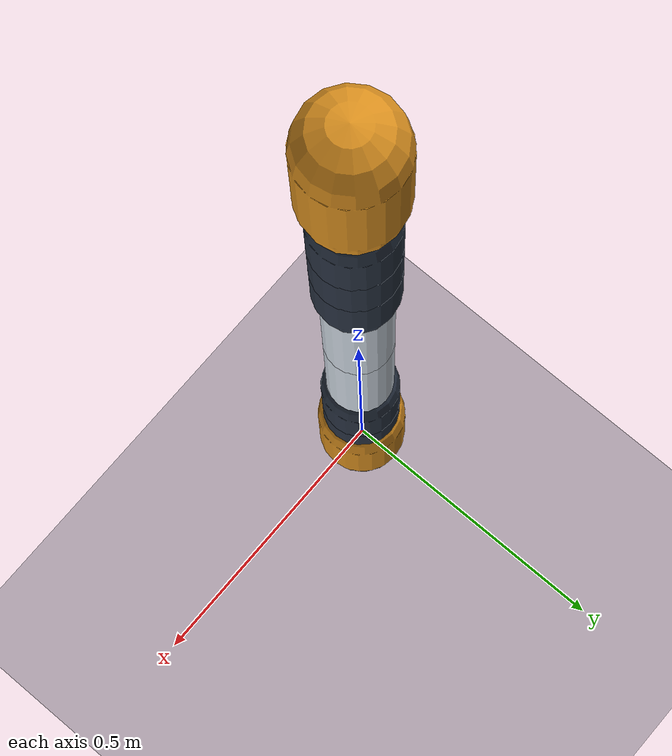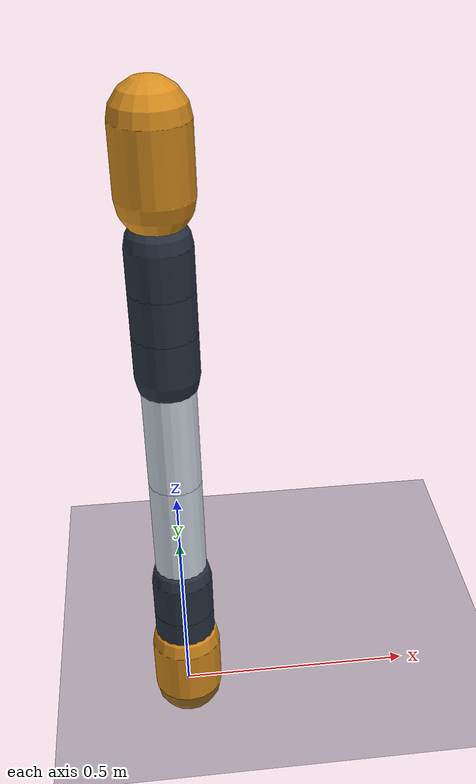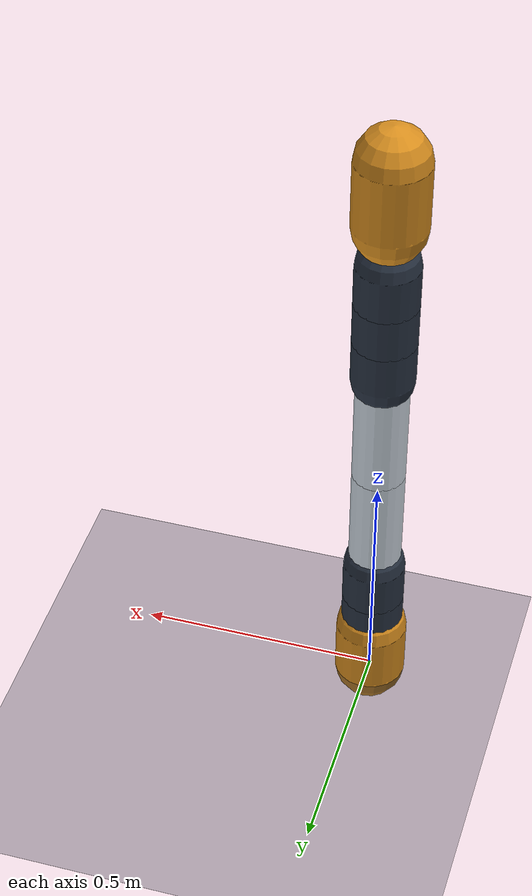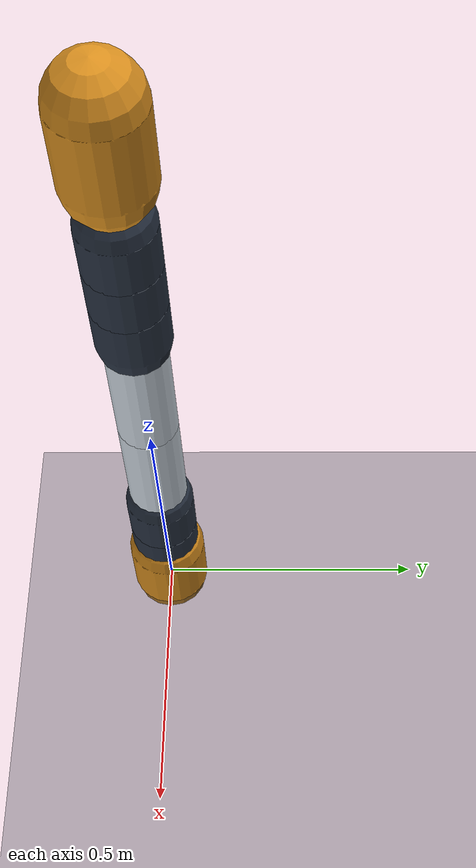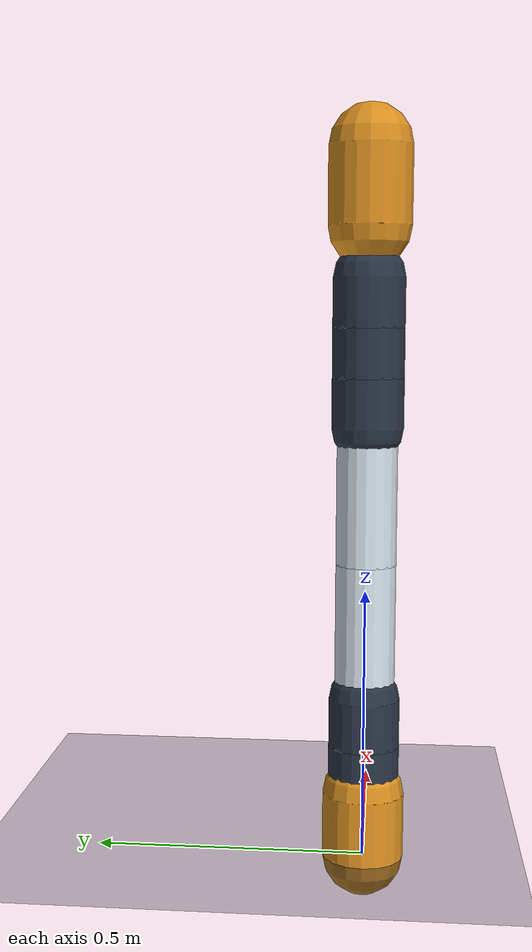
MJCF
<mujoco model="ewalker_inspired_7dof">
  <compiler angle="radian"/>
  <option gravity="0 0 0" timestep="0.002"/>
  <default>
    <joint armature="0.01" damping="0.02"/>
    <geom type="capsule" contype="1" conaffinity="1" friction="0.6 0.05 0.01"
          rgba="0.82 0.86 0.90 1"/>
  </default>

  <worldbody>
    <light pos="0 0 2" dir="0 0 -1" diffuse="0.8 0.8 0.8"/>
    <geom name="floor" type="plane" size="3 3 0.1" pos="0 0 0"
          rgba="0.08 0.10 0.15 1" contype="0" conaffinity="0"/>

    <body name="ewalker_base">
      <geom name="ewalker_base_capsule" size="0.075 0.06" pos="0 0 0.06"
            rgba="0.85 0.56 0.12 1"/>
      <body name="ewalker_link1" pos="0 0 0.12">
        <joint name="ewalker_joint1" axis="0 0 1" range="-3.1415926536 3.1415926536"/>
        <inertial pos="0 0 0.045" mass="1.15" diaginertia="0.00199 0.00199 0.00243"/>
        <geom name="ewalker_link1_capsule" size="0.065 0.045" pos="0 0 0.045"
              rgba="0.16 0.20 0.26 1"/>
        <body name="ewalker_link2" pos="0 0 0.09">
          <joint name="ewalker_joint2" axis="0 1 0" range="-2.617993878 2.617993878"/>
          <inertial pos="0 0 0.045" mass="1.15" diaginertia="0.00199 0.00199 0.00243"/>
          <geom name="ewalker_link2_capsule" size="0.065 0.045" pos="0 0 0.045"
                rgba="0.16 0.20 0.26 1"/>
          <body name="ewalker_link3" pos="0 0 0.09">
            <joint name="ewalker_joint3" axis="1 0 0" range="-3.1415926536 3.1415926536"/>
            <inertial pos="0 0 0.125" mass="1.35" diaginertia="0.00805 0.00805 0.00204"/>
            <geom name="ewalker_link3_capsule" size="0.055 0.125" pos="0 0 0.125"/>
            <body name="ewalker_link4" pos="0 0 0.25">
              <joint name="ewalker_joint4" axis="0 1 0" range="-2.617993878 2.617993878"/>
              <inertial pos="0 0 0.125" mass="1.35" diaginertia="0.00805 0.00805 0.00204"/>
              <geom name="ewalker_link4_capsule" size="0.055 0.125" pos="0 0 0.125"/>
              <body name="ewalker_link5" pos="0 0 0.25">
                <joint name="ewalker_joint5" axis="1 0 0" range="-3.1415926536 3.1415926536"/>
                <inertial pos="0 0 0.045" mass="1.15" diaginertia="0.00199 0.00199 0.00243"/>
                <geom name="ewalker_link5_capsule" size="0.065 0.045" pos="0 0 0.045"
                      rgba="0.16 0.20 0.26 1"/>
                <body name="ewalker_link6" pos="0 0 0.09">
                  <joint name="ewalker_joint6" axis="0 1 0" range="-2.617993878 2.617993878"/>
                  <inertial pos="0 0 0.045" mass="1.15" diaginertia="0.00199 0.00199 0.00243"/>
                  <geom name="ewalker_link6_capsule" size="0.065 0.045" pos="0 0 0.045"
                        rgba="0.16 0.20 0.26 1"/>
                  <body name="ewalker_link7" pos="0 0 0.09">
                    <joint name="ewalker_joint7" axis="0 0 1" range="-3.1415926536 3.1415926536"/>
                    <inertial pos="0 0 0.08" mass="1.70" diaginertia="0.0048 0.0048 0.0040"/>
                    <geom name="ewalker_link7_capsule" size="0.065 0.045" pos="0 0 0.045"
                          rgba="0.16 0.20 0.26 1"/>
                    <geom name="ewalker_lee_capsule" size="0.075 0.07" pos="0 0 0.25"
                          rgba="0.85 0.56 0.12 1"/>
                    <site name="ee_site" pos="0 0 0.32" size="0.012"
                          rgba="1 0.2 0.1 0.8"/>
                  </body>
                </body>
              </body>
            </body>
          </body>
        </body>
      </body>
    </body>

    <!-- Fixed-capacity obstacle pool, positioned and resized at runtime. -->
    <body name="obstacle0" mocap="true"><geom name="obs0" type="sphere" size="0.03" rgba="1 0 0 0.6"/></body>
    <body name="obstacle1" mocap="true"><geom name="obs1" type="sphere" size="0.03" rgba="1 0 0 0.6"/></body>
    <body name="obstacle2" mocap="true"><geom name="obs2" type="sphere" size="0.03" rgba="1 0 0 0.6"/></body>
    <body name="obstacle3" mocap="true"><geom name="obs3" type="sphere" size="0.03" rgba="1 0 0 0.6"/></body>
    <body name="obstacle4" mocap="true"><geom name="obs4" type="sphere" size="0.03" rgba="1 0 0 0.6"/></body>
    <body name="obstacle5" mocap="true"><geom name="obs5" type="sphere" size="0.03" rgba="1 0 0 0.6"/></body>
    <body name="obstacle6" mocap="true"><geom name="obs6" type="sphere" size="0.03" rgba="1 0 0 0.6"/></body>
    <body name="obstacle7" mocap="true"><geom name="obs7" type="sphere" size="0.03" rgba="1 0 0 0.6"/></body>
    <body name="obstacle8" mocap="true"><geom name="obs8" type="sphere" size="0.03" rgba="1 0 0 0.6"/></body>
    <body name="obstacle9" mocap="true"><geom name="obs9" type="sphere" size="0.03" rgba="1 0 0 0.6"/></body>
  </worldbody>

  <actuator>
    <velocity name="act_j1" joint="ewalker_joint1" kv="100" ctrlrange="-0.5 0.5"/>
    <velocity name="act_j2" joint="ewalker_joint2" kv="100" ctrlrange="-0.5 0.5"/>
    <velocity name="act_j3" joint="ewalker_joint3" kv="100" ctrlrange="-0.5 0.5"/>
    <velocity name="act_j4" joint="ewalker_joint4" kv="100" ctrlrange="-0.5 0.5"/>
    <velocity name="act_j5" joint="ewalker_joint5" kv="100" ctrlrange="-0.5 0.5"/>
    <velocity name="act_j6" joint="ewalker_joint6" kv="100" ctrlrange="-0.5 0.5"/>
    <velocity name="act_j7" joint="ewalker_joint7" kv="100" ctrlrange="-0.5 0.5"/>
  </actuator>
</mujoco>
